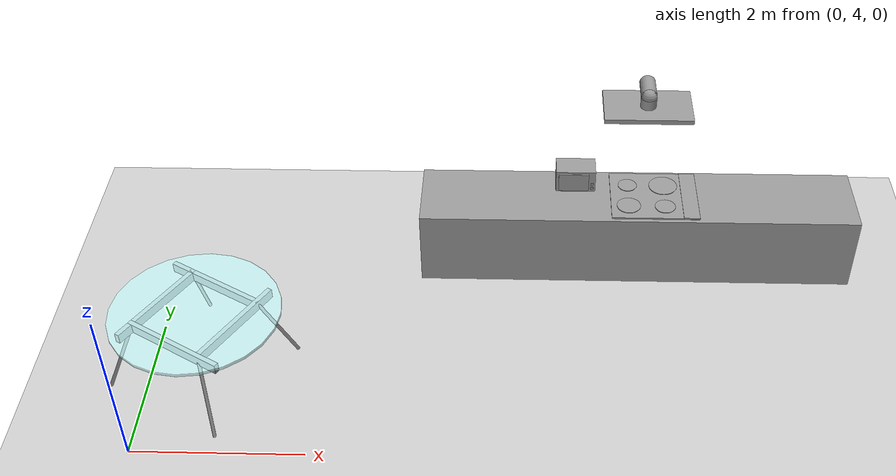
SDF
<sdf version="1.7">
 <world name="default">
  <model name="ground_plane">
   <static>1</static>
   <link name="link">
    <collision name="collision">
     <geometry><plane><normal>0 0 1</normal><size>100 100</size></plane></geometry>
     <surface>
      <contact><collide_bitmask>65535</collide_bitmask></contact>
      <friction><ode><mu>100</mu><mu2>50</mu2></ode></friction>
     </surface>
    </collision>
    <visual name="visual">
     <cast_shadows>0</cast_shadows>
     <geometry><plane><normal>0 0 1</normal><size>100 100</size></plane></geometry>
     <material>
      <script><uri>file://media/materials/scripts/gazebo.material</uri><name>Gazebo/Grey</name></script>
     </material>
    </visual>
   </link>
  </model>
  <model name="my_vacuum">
   <link name="link">
    <inertial>
     <mass>1</mass>
     <inertia>
      <ixx>0.166667</ixx>
      <ixy>0</ixy>
      <ixz>0</ixz>
      <iyy>0.166667</iyy>
      <iyz>0</iyz>
      <izz>0.166667</izz>
     </inertia>
    </inertial>
    <pose>0 -0.048228 0 0 -0 0</pose>
    <visual name="visual">
     <geometry><box><size>1.1 0.65 0.06</size></box></geometry>
     <material>
      <script><name>Gazebo/Grey</name><uri>file://media/materials/scripts/gazebo.material</uri></script>
      <shader type="pixel"><normal_map>__default__</normal_map></shader>
      <ambient>0.3 0.3 0.3 1</ambient>
      <diffuse>0.3 0.3 0.3 1</diffuse>
      <specular>0.01 0.01 0.01 1</specular>
      <emissive>0 0 0 1</emissive>
     </material>
     <pose>0 0 2.1 0 -0 0</pose>
    </visual>
    <collision name="collision">
     <pose>0 0 2.1 0 -0 0</pose>
     <geometry><box><size>1.1 0.65 0.06</size></box></geometry>
     <surface>
      <friction>
       <ode><mu>1</mu><mu2>1</mu2><fdir1>0 0 0</fdir1><slip1>0</slip1><slip2>0</slip2></ode>
       <torsional>
        <coefficient>1</coefficient>
        <patch_radius>0</patch_radius>
        <surface_radius>0</surface_radius>
        <use_patch_radius>1</use_patch_radius>
        <ode><slip>0</slip></ode>
       </torsional>
      </friction>
      <bounce><restitution_coefficient>0</restitution_coefficient><threshold>1e+06</threshold></bounce>
      <contact>
       <collide_without_contact>0</collide_without_contact>
       <collide_without_contact_bitmask>1</collide_without_contact_bitmask>
       <collide_bitmask>1</collide_bitmask>
       <ode>
        <soft_cfm>0</soft_cfm>
        <soft_erp>0.2</soft_erp>
        <kp>1e+13</kp>
        <kd>1</kd>
        <max_vel>0.01</max_vel>
        <min_depth>0</min_depth>
       </ode>
       <bullet>
        <split_impulse>1</split_impulse>
        <split_impulse_penetration_threshold>-0.01</split_impulse_penetration_threshold>
        <soft_cfm>0</soft_cfm>
        <soft_erp>0.2</soft_erp>
        <kp>1e+13</kp>
        <kd>1</kd>
       </bullet>
      </contact>
     </surface>
    </collision>
   </link>
   <link name="link_1">
    <inertial>
     <mass>1</mass>
     <inertia><ixx>0.145833</ixx><ixy>0</ixy><ixz>0</ixz><iyy>0.145833</iyy><iyz>0</iyz><izz>0.125</izz></inertia>
    </inertial>
    <pose>0.003402 -0.072362 2.63858 0 -0 0</pose>
    <visual name="visual">
     <pose>0 0 -0.45 0 -0 0</pose>
     <geometry><cylinder><radius>0.1</radius><length>0.15</length></cylinder></geometry>
     <material>
      <lighting>1</lighting>
      <script><uri>file://media/materials/scripts/gazebo.material</uri><name>Gazebo/Grey</name></script>
      <shader type="pixel"><normal_map>__default__</normal_map></shader>
      <ambient>0.3 0.3 0.3 1</ambient>
      <diffuse>0.3 0.3 0.3 1</diffuse>
      <specular>0.01 0.01 0.01 1</specular>
      <emissive>0 0 0 1</emissive>
     </material>
    </visual>
    <collision name="collision">
     <pose>0 0 -0.45 0 -0 0</pose>
     <geometry><cylinder><radius>0.1</radius><length>0.15</length></cylinder></geometry>
     <surface>
      <friction>
       <ode><mu>1</mu><mu2>1</mu2><fdir1>0 0 0</fdir1><slip1>0</slip1><slip2>0</slip2></ode>
       <torsional>
        <coefficient>1</coefficient>
        <patch_radius>0</patch_radius>
        <surface_radius>0</surface_radius>
        <use_patch_radius>1</use_patch_radius>
        <ode><slip>0</slip></ode>
       </torsional>
      </friction>
      <bounce><restitution_coefficient>0</restitution_coefficient><threshold>1e+06</threshold></bounce>
      <contact>
       <collide_without_contact>0</collide_without_contact>
       <collide_without_contact_bitmask>1</collide_without_contact_bitmask>
       <collide_bitmask>1</collide_bitmask>
       <ode>
        <soft_cfm>0</soft_cfm>
        <soft_erp>0.2</soft_erp>
        <kp>1e+13</kp>
        <kd>1</kd>
        <max_vel>0.01</max_vel>
        <min_depth>0</min_depth>
       </ode>
       <bullet>
        <split_impulse>1</split_impulse>
        <split_impulse_penetration_threshold>-0.01</split_impulse_penetration_threshold>
        <soft_cfm>0</soft_cfm>
        <soft_erp>0.2</soft_erp>
        <kp>1e+13</kp>
        <kd>1</kd>
       </bullet>
      </contact>
     </surface>
    </collision>
   </link>
   <link name="link_1_clone">
    <inertial>
     <mass>1</mass>
     <inertia><ixx>0.145833</ixx><ixy>0</ixy><ixz>0</ixz><iyy>0.145833</iyy><iyz>0</iyz><izz>0.125</izz></inertia>
    </inertial>
    <pose>0.004004 0.087852 2.71388 0 -0 0</pose>
    <visual name="visual">
     <pose>0 0 -0.45 1.5707 -0 0</pose>
     <geometry><cylinder><radius>0.1</radius><length>0.35</length></cylinder></geometry>
     <material>
      <lighting>1</lighting>
      <script><uri>file://media/materials/scripts/gazebo.material</uri><name>Gazebo/Grey</name></script>
      <shader type="pixel"><normal_map>__default__</normal_map></shader>
      <ambient>0.3 0.3 0.3 1</ambient>
      <diffuse>0.3 0.3 0.3 1</diffuse>
      <specular>0.01 0.01 0.01 1</specular>
      <emissive>0 0 0 1</emissive>
     </material>
    </visual>
    <collision name="collision">
     <pose>0 0 -0.45 1.5707 -0 0</pose>
     <geometry><cylinder><radius>0.1</radius><length>0.35</length></cylinder></geometry>
     <surface>
      <friction>
       <ode><mu>1</mu><mu2>1</mu2><fdir1>0 0 0</fdir1><slip1>0</slip1><slip2>0</slip2></ode>
       <torsional>
        <coefficient>1</coefficient>
        <patch_radius>0</patch_radius>
        <surface_radius>0</surface_radius>
        <use_patch_radius>1</use_patch_radius>
        <ode><slip>0</slip></ode>
       </torsional>
      </friction>
      <bounce><restitution_coefficient>0</restitution_coefficient><threshold>1e+06</threshold></bounce>
      <contact>
       <collide_without_contact>0</collide_without_contact>
       <collide_without_contact_bitmask>1</collide_without_contact_bitmask>
       <collide_bitmask>1</collide_bitmask>
       <ode>
        <soft_cfm>0</soft_cfm>
        <soft_erp>0.2</soft_erp>
        <kp>1e+13</kp>
        <kd>1</kd>
        <max_vel>0.01</max_vel>
        <min_depth>0</min_depth>
       </ode>
       <bullet>
        <split_impulse>1</split_impulse>
        <split_impulse_penetration_threshold>-0.01</split_impulse_penetration_threshold>
        <soft_cfm>0</soft_cfm>
        <soft_erp>0.2</soft_erp>
        <kp>1e+13</kp>
        <kd>1</kd>
       </bullet>
      </contact>
     </surface>
    </collision>
   </link>
   <link name="link_3">
    <inertial>
     <mass>1</mass>
     <inertia><ixx>0.1</ixx><ixy>0</ixy><ixz>0</ixz><iyy>0.1</iyy><iyz>0</iyz><izz>0.1</izz></inertia>
    </inertial>
    <pose>0.004236 -0.071859 2.71646 0 -0 0</pose>
    <visual name="visual">
     <pose>0 0 -0.45 0 -0 0</pose>
     <geometry><sphere><radius>0.1</radius></sphere></geometry>
     <material>
      <lighting>1</lighting>
      <script><uri>file://media/materials/scripts/gazebo.material</uri><name>Gazebo/Grey</name></script>
      <shader type="pixel"><normal_map>__default__</normal_map></shader>
      <ambient>0.3 0.3 0.3 1</ambient>
      <diffuse>0.3 0.3 0.3 1</diffuse>
      <specular>0.01 0.01 0.01 1</specular>
      <emissive>0 0 0 1</emissive>
     </material>
    </visual>
    <collision name="collision">
     <pose>0 0 -0.45 0 -0 0</pose>
     <geometry><sphere><radius>0.1</radius></sphere></geometry>
     <surface>
      <friction>
       <ode><mu>1</mu><mu2>1</mu2><fdir1>0 0 0</fdir1><slip1>0</slip1><slip2>0</slip2></ode>
       <torsional>
        <coefficient>1</coefficient>
        <patch_radius>0</patch_radius>
        <surface_radius>0</surface_radius>
        <use_patch_radius>1</use_patch_radius>
        <ode><slip>0</slip></ode>
       </torsional>
      </friction>
      <bounce><restitution_coefficient>0</restitution_coefficient><threshold>1e+06</threshold></bounce>
      <contact>
       <collide_without_contact>0</collide_without_contact>
       <collide_without_contact_bitmask>1</collide_without_contact_bitmask>
       <collide_bitmask>1</collide_bitmask>
       <ode>
        <soft_cfm>0</soft_cfm>
        <soft_erp>0.2</soft_erp>
        <kp>1e+13</kp>
        <kd>1</kd>
        <max_vel>0.01</max_vel>
        <min_depth>0</min_depth>
       </ode>
       <bullet>
        <split_impulse>1</split_impulse>
        <split_impulse_penetration_threshold>-0.01</split_impulse_penetration_threshold>
        <soft_cfm>0</soft_cfm>
        <soft_erp>0.2</soft_erp>
        <kp>1e+13</kp>
        <kd>1</kd>
       </bullet>
      </contact>
     </surface>
    </collision>
   </link>
   <static>1</static>
   <pose>5.94867 7.95804 -0.027775 0 -0 0</pose>
  </model>
  <model name="my_microwave">
   <link name="link">
    <inertial>
     <mass>1</mass>
     <inertia>
      <ixx>0.166667</ixx>
      <ixy>0</ixy>
      <ixz>0</ixz>
      <iyy>0.166667</iyy>
      <iyz>0</iyz>
      <izz>0.166667</izz>
     </inertia>
    </inertial>
    <visual name="visual">
     <geometry><box><size>0.5 0.3 0.3</size></box></geometry>
     <material>
      <script><name>Gazebo/Grey</name><uri>file://media/materials/scripts/gazebo.material</uri></script>
      <shader type="pixel"><normal_map>__default__</normal_map></shader>
      <ambient>0.9 0.9 0.9 1</ambient>
      <diffuse>0.9 0.9 0.9 1</diffuse>
      <specular>0.01 0.01 0.01 1</specular>
      <emissive>0 0 0 1</emissive>
     </material>
     <pose>0 0 1.15 0 -0 0</pose>
    </visual>
    <collision name="collision">
     <pose>0 0 1.15 0 -0 0</pose>
     <geometry><box><size>0.5 0.3 0.3</size></box></geometry>
     <surface>
      <friction>
       <ode><mu>1</mu><mu2>1</mu2><fdir1>0 0 0</fdir1><slip1>0</slip1><slip2>0</slip2></ode>
       <torsional>
        <coefficient>1</coefficient>
        <patch_radius>0</patch_radius>
        <surface_radius>0</surface_radius>
        <use_patch_radius>1</use_patch_radius>
        <ode><slip>0</slip></ode>
       </torsional>
      </friction>
      <bounce><restitution_coefficient>0</restitution_coefficient><threshold>1e+06</threshold></bounce>
      <contact>
       <collide_without_contact>0</collide_without_contact>
       <collide_without_contact_bitmask>1</collide_without_contact_bitmask>
       <collide_bitmask>1</collide_bitmask>
       <ode>
        <soft_cfm>0</soft_cfm>
        <soft_erp>0.2</soft_erp>
        <kp>1e+13</kp>
        <kd>1</kd>
        <max_vel>0.01</max_vel>
        <min_depth>0</min_depth>
       </ode>
       <bullet>
        <split_impulse>1</split_impulse>
        <split_impulse_penetration_threshold>-0.01</split_impulse_penetration_threshold>
        <soft_cfm>0</soft_cfm>
        <soft_erp>0.2</soft_erp>
        <kp>1e+13</kp>
        <kd>1</kd>
       </bullet>
      </contact>
     </surface>
    </collision>
   </link>
   <link name="link_0">
    <inertial>
     <mass>1</mass>
     <inertia><ixx>0.145833</ixx><ixy>0</ixy><ixz>0</ixz><iyy>0.145833</iyy><iyz>0</iyz><izz>0.125</izz></inertia>
    </inertial>
    <pose>0.208916 -0.163165 -0.025713 0 -0 0</pose>
    <visual name="visual">
     <pose>0 0 1.15 1.5707 -0 0</pose>
     <geometry><cylinder><radius>0.02</radius><length>0.01</length></cylinder></geometry>
     <material>
      <lighting>1</lighting>
      <script><uri>file://media/materials/scripts/gazebo.material</uri><name>Gazebo/Grey</name></script>
      <shader type="pixel"><normal_map>__default__</normal_map></shader>
      <ambient>0.3 0.3 0.3 1</ambient>
      <diffuse>0.7 0.7 0.7 1</diffuse>
      <specular>0.01 0.01 0.01 1</specular>
      <emissive>0 0 0 1</emissive>
     </material>
    </visual>
    <collision name="collision">
     <pose>0 0 1.15 0 -0 0</pose>
     <geometry><cylinder><radius>0.02</radius><length>0.01</length></cylinder></geometry>
     <surface>
      <friction>
       <ode><mu>1</mu><mu2>1</mu2><fdir1>0 0 0</fdir1><slip1>0</slip1><slip2>0</slip2></ode>
       <torsional>
        <coefficient>1</coefficient>
        <patch_radius>0</patch_radius>
        <surface_radius>0</surface_radius>
        <use_patch_radius>1</use_patch_radius>
        <ode><slip>0</slip></ode>
       </torsional>
      </friction>
      <bounce><restitution_coefficient>0</restitution_coefficient><threshold>1e+06</threshold></bounce>
      <contact>
       <collide_without_contact>0</collide_without_contact>
       <collide_without_contact_bitmask>1</collide_without_contact_bitmask>
       <collide_bitmask>1</collide_bitmask>
       <ode>
        <soft_cfm>0</soft_cfm>
        <soft_erp>0.2</soft_erp>
        <kp>1e+13</kp>
        <kd>1</kd>
        <max_vel>0.01</max_vel>
        <min_depth>0</min_depth>
       </ode>
       <bullet>
        <split_impulse>1</split_impulse>
        <split_impulse_penetration_threshold>-0.01</split_impulse_penetration_threshold>
        <soft_cfm>0</soft_cfm>
        <soft_erp>0.2</soft_erp>
        <kp>1e+13</kp>
        <kd>1</kd>
       </bullet>
      </contact>
     </surface>
    </collision>
   </link>
   <link name="link_0_clone">
    <inertial>
     <mass>1</mass>
     <inertia><ixx>0.145833</ixx><ixy>0</ixy><ixz>0</ixz><iyy>0.145833</iyy><iyz>0</iyz><izz>0.125</izz></inertia>
    </inertial>
    <pose>0.209169 -0.165813 -0.087936 0 -0 0</pose>
    <visual name="visual">
     <pose>0 0 1.15 1.5707 -0 0</pose>
     <geometry><cylinder><radius>0.02</radius><length>0.01</length></cylinder></geometry>
     <material>
      <lighting>1</lighting>
      <script><uri>file://media/materials/scripts/gazebo.material</uri><name>Gazebo/Grey</name></script>
      <shader type="pixel"><normal_map>__default__</normal_map></shader>
      <ambient>0.3 0.3 0.3 1</ambient>
      <diffuse>0.7 0.7 0.7 1</diffuse>
      <specular>0.01 0.01 0.01 1</specular>
      <emissive>0 0 0 1</emissive>
     </material>
    </visual>
    <collision name="collision">
     <pose>0 0 1.15 0 -0 0</pose>
     <geometry><cylinder><radius>0.02</radius><length>0.01</length></cylinder></geometry>
     <surface>
      <friction>
       <ode><mu>1</mu><mu2>1</mu2><fdir1>0 0 0</fdir1><slip1>0</slip1><slip2>0</slip2></ode>
       <torsional>
        <coefficient>1</coefficient>
        <patch_radius>0</patch_radius>
        <surface_radius>0</surface_radius>
        <use_patch_radius>1</use_patch_radius>
        <ode><slip>0</slip></ode>
       </torsional>
      </friction>
      <bounce><restitution_coefficient>0</restitution_coefficient><threshold>1e+06</threshold></bounce>
      <contact>
       <collide_without_contact>0</collide_without_contact>
       <collide_without_contact_bitmask>1</collide_without_contact_bitmask>
       <collide_bitmask>1</collide_bitmask>
       <ode>
        <soft_cfm>0</soft_cfm>
        <soft_erp>0.2</soft_erp>
        <kp>1e+13</kp>
        <kd>1</kd>
        <max_vel>0.01</max_vel>
        <min_depth>0</min_depth>
       </ode>
       <bullet>
        <split_impulse>1</split_impulse>
        <split_impulse_penetration_threshold>-0.01</split_impulse_penetration_threshold>
        <soft_cfm>0</soft_cfm>
        <soft_erp>0.2</soft_erp>
        <kp>1e+13</kp>
        <kd>1</kd>
       </bullet>
      </contact>
     </surface>
    </collision>
   </link>
   <link name="link_clone">
    <inertial>
     <mass>1</mass>
     <inertia>
      <ixx>0.166667</ixx>
      <ixy>0</ixy>
      <ixz>0</ixz>
      <iyy>0.166667</iyy>
      <iyz>0</iyz>
      <izz>0.166667</izz>
     </inertia>
    </inertial>
    <pose>-0.026233 -0.15998 0 0 -0 0</pose>
    <visual name="visual">
     <geometry><box><size>0.38 0.02 0.25</size></box></geometry>
     <material>
      <script><name>Gazebo/Grey</name><uri>file://media/materials/scripts/gazebo.material</uri></script>
      <shader type="pixel"><normal_map>__default__</normal_map></shader>
      <ambient>0.2 0.2 0.2 1</ambient>
      <diffuse>0.2 0.2 0.2 1</diffuse>
      <specular>0.01 0.01 0.01 1</specular>
      <emissive>0 0 0 1</emissive>
     </material>
     <pose>0 0 1.15 0 -0 0</pose>
    </visual>
    <collision name="collision">
     <pose>0 0 1.15 0 -0 0</pose>
     <geometry><box><size>0.38 0.02 0.25</size></box></geometry>
     <surface>
      <friction>
       <ode><mu>1</mu><mu2>1</mu2><fdir1>0 0 0</fdir1><slip1>0</slip1><slip2>0</slip2></ode>
       <torsional>
        <coefficient>1</coefficient>
        <patch_radius>0</patch_radius>
        <surface_radius>0</surface_radius>
        <use_patch_radius>1</use_patch_radius>
        <ode><slip>0</slip></ode>
       </torsional>
      </friction>
      <bounce><restitution_coefficient>0</restitution_coefficient><threshold>1e+06</threshold></bounce>
      <contact>
       <collide_without_contact>0</collide_without_contact>
       <collide_without_contact_bitmask>1</collide_without_contact_bitmask>
       <collide_bitmask>1</collide_bitmask>
       <ode>
        <soft_cfm>0</soft_cfm>
        <soft_erp>0.2</soft_erp>
        <kp>1e+13</kp>
        <kd>1</kd>
        <max_vel>0.01</max_vel>
        <min_depth>0</min_depth>
       </ode>
       <bullet>
        <split_impulse>1</split_impulse>
        <split_impulse_penetration_threshold>-0.01</split_impulse_penetration_threshold>
        <soft_cfm>0</soft_cfm>
        <soft_erp>0.2</soft_erp>
        <kp>1e+13</kp>
        <kd>1</kd>
       </bullet>
      </contact>
     </surface>
    </collision>
   </link>
   <static>1</static>
   <pose>5.08394 7.71295 0 0 -0 0</pose>
  </model>
  <model name="my_kitchen">
   <link name="link">
    <inertial>
     <mass>1</mass>
     <inertia>
      <ixx>0.166667</ixx>
      <ixy>0</ixy>
      <ixz>0</ixz>
      <iyy>0.166667</iyy>
      <iyz>0</iyz>
      <izz>0.166667</izz>
     </inertia>
    </inertial>
    <pose>1.23923 -0.000128 0 0 -0 0</pose>
    <visual name="visual">
     <geometry><box><size>5.5 1 1</size></box></geometry>
     <material>
      <script><name>Gazebo/Grey</name><uri>file://media/materials/scripts/gazebo.material</uri></script>
      <shader type="pixel"><normal_map>__default__</normal_map></shader>
      <ambient>0.8 0.8 0.8 1</ambient>
      <diffuse>0.65 0.65 0.65 1</diffuse>
      <specular>0.01 0.01 0.01 1</specular>
      <emissive>0 0 0 1</emissive>
     </material>
     <pose>0 0 0.5 0 -0 0</pose>
    </visual>
    <collision name="collision">
     <pose>0 0 0.5 0 -0 0</pose>
     <geometry><box><size>5.5 1 1</size></box></geometry>
     <surface>
      <friction>
       <ode><mu>1</mu><mu2>1</mu2><fdir1>0 0 0</fdir1><slip1>0</slip1><slip2>0</slip2></ode>
       <torsional>
        <coefficient>1</coefficient>
        <patch_radius>0</patch_radius>
        <surface_radius>0</surface_radius>
        <use_patch_radius>1</use_patch_radius>
        <ode><slip>0</slip></ode>
       </torsional>
      </friction>
      <bounce><restitution_coefficient>0</restitution_coefficient><threshold>1e+06</threshold></bounce>
      <contact>
       <collide_without_contact>0</collide_without_contact>
       <collide_without_contact_bitmask>1</collide_without_contact_bitmask>
       <collide_bitmask>1</collide_bitmask>
       <ode>
        <soft_cfm>0</soft_cfm>
        <soft_erp>0.2</soft_erp>
        <kp>1e+13</kp>
        <kd>1</kd>
        <max_vel>0.01</max_vel>
        <min_depth>0</min_depth>
       </ode>
       <bullet>
        <split_impulse>1</split_impulse>
        <split_impulse_penetration_threshold>-0.01</split_impulse_penetration_threshold>
        <soft_cfm>0</soft_cfm>
        <soft_erp>0.2</soft_erp>
        <kp>1e+13</kp>
        <kd>1</kd>
       </bullet>
      </contact>
     </surface>
    </collision>
   </link>
   <link name="link_0_0">
    <inertial>
     <mass>1</mass>
     <inertia><ixx>0.145833</ixx><ixy>0</ixy><ixz>0</ixz><iyy>0.145833</iyy><iyz>0</iyz><izz>0.125</izz></inertia>
    </inertial>
    <pose>1.11587 -0.213264 1.02593 0 -0 0</pose>
    <gravity>0</gravity>
    <visual name="visual">
     <geometry><cylinder><radius>0.15</radius><length>0.01</length></cylinder></geometry>
     <material>
      <lighting>1</lighting>
      <script><uri>file://media/materials/scripts/gazebo.material</uri><name>Gazebo/Grey</name></script>
      <shader type="pixel"><normal_map>__default__</normal_map></shader>
      <ambient>0.3 0.3 0.3 1</ambient>
      <diffuse>0.3 0.3 0.3 1</diffuse>
      <specular>0.01 0.01 0.01 1</specular>
      <emissive>0 0 0 1</emissive>
     </material>
    </visual>
    <collision name="collision">
     <geometry><cylinder><radius>0.15</radius><length>0.01</length></cylinder></geometry>
     <surface>
      <friction>
       <ode><mu>1</mu><mu2>1</mu2><fdir1>0 0 0</fdir1><slip1>0</slip1><slip2>0</slip2></ode>
       <torsional>
        <coefficient>1</coefficient>
        <patch_radius>0</patch_radius>
        <surface_radius>0</surface_radius>
        <use_patch_radius>1</use_patch_radius>
        <ode><slip>0</slip></ode>
       </torsional>
      </friction>
      <bounce><restitution_coefficient>0</restitution_coefficient><threshold>1e+06</threshold></bounce>
      <contact>
       <collide_without_contact>0</collide_without_contact>
       <collide_without_contact_bitmask>1</collide_without_contact_bitmask>
       <collide_bitmask>1</collide_bitmask>
       <ode>
        <soft_cfm>0</soft_cfm>
        <soft_erp>0.2</soft_erp>
        <kp>1e+13</kp>
        <kd>1</kd>
        <max_vel>0.01</max_vel>
        <min_depth>0</min_depth>
       </ode>
       <bullet>
        <split_impulse>1</split_impulse>
        <split_impulse_penetration_threshold>-0.01</split_impulse_penetration_threshold>
        <soft_cfm>0</soft_cfm>
        <soft_erp>0.2</soft_erp>
        <kp>1e+13</kp>
        <kd>1</kd>
       </bullet>
      </contact>
     </surface>
    </collision>
   </link>
   <link name="link_0_0_clone">
    <inertial>
     <mass>1</mass>
     <inertia><ixx>0.145833</ixx><ixy>0</ixy><ixz>0</ixz><iyy>0.145833</iyy><iyz>0</iyz><izz>0.125</izz></inertia>
    </inertial>
    <pose>1.11788 0.197131 1.02593 0 -0 0</pose>
    <gravity>0</gravity>
    <visual name="visual">
     <geometry><cylinder><radius>0.12</radius><length>0.01</length></cylinder></geometry>
     <material>
      <lighting>1</lighting>
      <script><uri>file://media/materials/scripts/gazebo.material</uri><name>Gazebo/Grey</name></script>
      <shader type="pixel"><normal_map>__default__</normal_map></shader>
      <ambient>0.3 0.3 0.3 1</ambient>
      <diffuse>0.3 0.3 0.3 1</diffuse>
      <specular>0.01 0.01 0.01 1</specular>
      <emissive>0 0 0 1</emissive>
     </material>
    </visual>
    <collision name="collision">
     <geometry><cylinder><radius>0.12</radius><length>0.01</length></cylinder></geometry>
     <surface>
      <friction>
       <ode><mu>1</mu><mu2>1</mu2><fdir1>0 0 0</fdir1><slip1>0</slip1><slip2>0</slip2></ode>
       <torsional>
        <coefficient>1</coefficient>
        <patch_radius>0</patch_radius>
        <surface_radius>0</surface_radius>
        <use_patch_radius>1</use_patch_radius>
        <ode><slip>0</slip></ode>
       </torsional>
      </friction>
      <bounce><restitution_coefficient>0</restitution_coefficient><threshold>1e+06</threshold></bounce>
      <contact>
       <collide_without_contact>0</collide_without_contact>
       <collide_without_contact_bitmask>1</collide_without_contact_bitmask>
       <collide_bitmask>1</collide_bitmask>
       <ode>
        <soft_cfm>0</soft_cfm>
        <soft_erp>0.2</soft_erp>
        <kp>1e+13</kp>
        <kd>1</kd>
        <max_vel>0.01</max_vel>
        <min_depth>0</min_depth>
       </ode>
       <bullet>
        <split_impulse>1</split_impulse>
        <split_impulse_penetration_threshold>-0.01</split_impulse_penetration_threshold>
        <soft_cfm>0</soft_cfm>
        <soft_erp>0.2</soft_erp>
        <kp>1e+13</kp>
        <kd>1</kd>
       </bullet>
      </contact>
     </surface>
    </collision>
   </link>
   <link name="link_0_0_clone_clone">
    <inertial>
     <mass>1</mass>
     <inertia><ixx>0.145833</ixx><ixy>0</ixy><ixz>0</ixz><iyy>0.145833</iyy><iyz>0</iyz><izz>0.125</izz></inertia>
    </inertial>
    <pose>1.57169 0.194413 1.02593 0 -0 0</pose>
    <gravity>0</gravity>
    <visual name="visual">
     <geometry><cylinder><radius>0.18</radius><length>0.01</length></cylinder></geometry>
     <material>
      <lighting>1</lighting>
      <script><uri>file://media/materials/scripts/gazebo.material</uri><name>Gazebo/Grey</name></script>
      <shader type="pixel"><normal_map>__default__</normal_map></shader>
      <ambient>0.3 0.3 0.3 1</ambient>
      <diffuse>0.3 0.3 0.3 1</diffuse>
      <specular>0.01 0.01 0.01 1</specular>
      <emissive>0 0 0 1</emissive>
     </material>
    </visual>
    <collision name="collision">
     <geometry><cylinder><radius>0.18</radius><length>0.01</length></cylinder></geometry>
     <surface>
      <friction>
       <ode><mu>1</mu><mu2>1</mu2><fdir1>0 0 0</fdir1><slip1>0</slip1><slip2>0</slip2></ode>
       <torsional>
        <coefficient>1</coefficient>
        <patch_radius>0</patch_radius>
        <surface_radius>0</surface_radius>
        <use_patch_radius>1</use_patch_radius>
        <ode><slip>0</slip></ode>
       </torsional>
      </friction>
      <bounce><restitution_coefficient>0</restitution_coefficient><threshold>1e+06</threshold></bounce>
      <contact>
       <collide_without_contact>0</collide_without_contact>
       <collide_without_contact_bitmask>1</collide_without_contact_bitmask>
       <collide_bitmask>1</collide_bitmask>
       <ode>
        <soft_cfm>0</soft_cfm>
        <soft_erp>0.2</soft_erp>
        <kp>1e+13</kp>
        <kd>1</kd>
        <max_vel>0.01</max_vel>
        <min_depth>0</min_depth>
       </ode>
       <bullet>
        <split_impulse>1</split_impulse>
        <split_impulse_penetration_threshold>-0.01</split_impulse_penetration_threshold>
        <soft_cfm>0</soft_cfm>
        <soft_erp>0.2</soft_erp>
        <kp>1e+13</kp>
        <kd>1</kd>
       </bullet>
      </contact>
     </surface>
    </collision>
   </link>
   <link name="link_0_0_clone_clone_clone">
    <inertial>
     <mass>1</mass>
     <inertia><ixx>0.145833</ixx><ixy>0</ixy><ixz>0</ixz><iyy>0.145833</iyy><iyz>0</iyz><izz>0.125</izz></inertia>
    </inertial>
    <pose>1.57274 -0.22407 1.02593 0 -0 0</pose>
    <gravity>0</gravity>
    <visual name="visual">
     <geometry><cylinder><radius>0.13</radius><length>0.01</length></cylinder></geometry>
     <material>
      <lighting>1</lighting>
      <script><uri>file://media/materials/scripts/gazebo.material</uri><name>Gazebo/Grey</name></script>
      <shader type="pixel"><normal_map>__default__</normal_map></shader>
      <ambient>0.3 0.3 0.3 1</ambient>
      <diffuse>0.3 0.3 0.3 1</diffuse>
      <specular>0.01 0.01 0.01 1</specular>
      <emissive>0 0 0 1</emissive>
     </material>
    </visual>
    <collision name="collision">
     <geometry><cylinder><radius>0.13</radius><length>0.01</length></cylinder></geometry>
     <surface>
      <friction>
       <ode><mu>1</mu><mu2>1</mu2><fdir1>0 0 0</fdir1><slip1>0</slip1><slip2>0</slip2></ode>
       <torsional>
        <coefficient>1</coefficient>
        <patch_radius>0</patch_radius>
        <surface_radius>0</surface_radius>
        <use_patch_radius>1</use_patch_radius>
        <ode><slip>0</slip></ode>
       </torsional>
      </friction>
      <bounce><restitution_coefficient>0</restitution_coefficient><threshold>1e+06</threshold></bounce>
      <contact>
       <collide_without_contact>0</collide_without_contact>
       <collide_without_contact_bitmask>1</collide_without_contact_bitmask>
       <collide_bitmask>1</collide_bitmask>
       <ode>
        <soft_cfm>0</soft_cfm>
        <soft_erp>0.2</soft_erp>
        <kp>1e+13</kp>
        <kd>1</kd>
        <max_vel>0.01</max_vel>
        <min_depth>0</min_depth>
       </ode>
       <bullet>
        <split_impulse>1</split_impulse>
        <split_impulse_penetration_threshold>-0.01</split_impulse_penetration_threshold>
        <soft_cfm>0</soft_cfm>
        <soft_erp>0.2</soft_erp>
        <kp>1e+13</kp>
        <kd>1</kd>
       </bullet>
      </contact>
     </surface>
    </collision>
   </link>
   <link name="link_clone_0">
    <inertial>
     <mass>1</mass>
     <inertia>
      <ixx>0.166667</ixx>
      <ixy>0</ixy>
      <ixz>0</ixz>
      <iyy>0.166667</iyy>
      <iyz>0</iyz>
      <izz>0.166667</izz>
     </inertia>
    </inertial>
    <pose>1.44437 -0.002505 0.513121 0 -0 0</pose>
    <gravity>0</gravity>
    <visual name="visual">
     <geometry><box><size>1.1 0.9 0.02</size></box></geometry>
     <material>
      <script><name>Gazebo/Grey</name><uri>file://media/materials/scripts/gazebo.material</uri></script>
      <shader type="pixel"><normal_map>__default__</normal_map></shader>
      <ambient>0.2 0.2 0.2 1</ambient>
      <diffuse>0.2 0.2 0.2 1</diffuse>
      <specular>0.01 0.01 0.01 1</specular>
      <emissive>0 0 0 1</emissive>
     </material>
     <pose>0 0 0.5 0 -0 0</pose>
    </visual>
    <collision name="collision">
     <pose>0 0 0.5 0 -0 0</pose>
     <geometry><box><size>1.1 0.9 0.02</size></box></geometry>
     <surface>
      <friction>
       <ode><mu>1</mu><mu2>1</mu2><fdir1>0 0 0</fdir1><slip1>0</slip1><slip2>0</slip2></ode>
       <torsional>
        <coefficient>1</coefficient>
        <patch_radius>0</patch_radius>
        <surface_radius>0</surface_radius>
        <use_patch_radius>1</use_patch_radius>
        <ode><slip>0</slip></ode>
       </torsional>
      </friction>
      <bounce><restitution_coefficient>0</restitution_coefficient><threshold>1e+06</threshold></bounce>
      <contact>
       <collide_without_contact>0</collide_without_contact>
       <collide_without_contact_bitmask>1</collide_without_contact_bitmask>
       <collide_bitmask>1</collide_bitmask>
       <ode>
        <soft_cfm>0</soft_cfm>
        <soft_erp>0.2</soft_erp>
        <kp>1e+13</kp>
        <kd>1</kd>
        <max_vel>0.01</max_vel>
        <min_depth>0</min_depth>
       </ode>
       <bullet>
        <split_impulse>1</split_impulse>
        <split_impulse_penetration_threshold>-0.01</split_impulse_penetration_threshold>
        <soft_cfm>0</soft_cfm>
        <soft_erp>0.2</soft_erp>
        <kp>1e+13</kp>
        <kd>1</kd>
       </bullet>
      </contact>
     </surface>
    </collision>
   </link>
   <link name="link_clone_0_clone">
    <inertial>
     <mass>1</mass>
     <inertia>
      <ixx>0.166667</ixx>
      <ixy>0</ixy>
      <ixz>0</ixz>
      <iyy>0.166667</iyy>
      <iyz>0</iyz>
      <izz>0.166667</izz>
     </inertia>
    </inertial>
    <pose>1.89193 -0.003715 0.520133 0 -0 0</pose>
    <gravity>0</gravity>
    <visual name="visual">
     <geometry><box><size>0.2 0.9 0.02</size></box></geometry>
     <material>
      <script><name>Gazebo/Grey</name><uri>file://media/materials/scripts/gazebo.material</uri></script>
      <shader type="pixel"><normal_map>__default__</normal_map></shader>
      <ambient>0.4 0.4 0.4 1</ambient>
      <diffuse>0.4 0.4 0.4 1</diffuse>
      <specular>0.01 0.01 0.01 1</specular>
      <emissive>0 0 0 1</emissive>
     </material>
     <pose>0 0 0.5 0 -0 0</pose>
    </visual>
    <collision name="collision">
     <pose>0 0 0.5 0 -0 0</pose>
     <geometry><box><size>0.2 0.9 0.02</size></box></geometry>
     <surface>
      <friction>
       <ode><mu>1</mu><mu2>1</mu2><fdir1>0 0 0</fdir1><slip1>0</slip1><slip2>0</slip2></ode>
       <torsional>
        <coefficient>1</coefficient>
        <patch_radius>0</patch_radius>
        <surface_radius>0</surface_radius>
        <use_patch_radius>1</use_patch_radius>
        <ode><slip>0</slip></ode>
       </torsional>
      </friction>
      <bounce><restitution_coefficient>0</restitution_coefficient><threshold>1e+06</threshold></bounce>
      <contact>
       <collide_without_contact>0</collide_without_contact>
       <collide_without_contact_bitmask>1</collide_without_contact_bitmask>
       <collide_bitmask>1</collide_bitmask>
       <ode>
        <soft_cfm>0</soft_cfm>
        <soft_erp>0.2</soft_erp>
        <kp>1e+13</kp>
        <kd>1</kd>
        <max_vel>0.01</max_vel>
        <min_depth>0</min_depth>
       </ode>
       <bullet>
        <split_impulse>1</split_impulse>
        <split_impulse_penetration_threshold>-0.01</split_impulse_penetration_threshold>
        <soft_cfm>0</soft_cfm>
        <soft_erp>0.2</soft_erp>
        <kp>1e+13</kp>
        <kd>1</kd>
       </bullet>
      </contact>
     </surface>
    </collision>
   </link>
   <static>1</static>
   <pose>4.63339 7.47111 0 0 -0 0</pose>
  </model>
  <model name="my_round_table">
   <link name="link_0">
    <inertial>
     <mass>1</mass>
     <inertia><ixx>0.145833</ixx><ixy>0</ixy><ixz>0</ixz><iyy>0.145833</iyy><iyz>0</iyz><izz>0.125</izz></inertia>
    </inertial>
    <pose>-0.33877 -8.15163 0.5 0 -0 0</pose>
    <visual name="visual">
     <pose>0 0 0.45 0 -0 0</pose>
     <geometry><cylinder><radius>1</radius><length>0.04</length></cylinder></geometry>
     <material>
      <lighting>1</lighting>
      <script><uri>file://media/materials/scripts/gazebo.material</uri><name>Gazebo/Grey</name></script>
      <shader type="pixel"><normal_map>__default__</normal_map></shader>
      <ambient>0.79 1 1 0.4</ambient>
      <diffuse>0.79 1 1 1</diffuse>
      <specular>0.01 0.01 0.01 1</specular>
      <emissive>0 0 0 1</emissive>
     </material>
     <transparency>0.3</transparency>
    </visual>
    <collision name="collision">
     <pose>0 0 0.45 0 -0 0</pose>
     <geometry><cylinder><radius>1</radius><length>0.04</length></cylinder></geometry>
     <surface>
      <friction>
       <ode><mu>1</mu><mu2>1</mu2><fdir1>0 0 0</fdir1><slip1>0</slip1><slip2>0</slip2></ode>
       <torsional>
        <coefficient>1</coefficient>
        <patch_radius>0</patch_radius>
        <surface_radius>0</surface_radius>
        <use_patch_radius>1</use_patch_radius>
        <ode><slip>0</slip></ode>
       </torsional>
      </friction>
      <bounce><restitution_coefficient>0</restitution_coefficient><threshold>1e+06</threshold></bounce>
      <contact>
       <collide_without_contact>0</collide_without_contact>
       <collide_without_contact_bitmask>1</collide_without_contact_bitmask>
       <collide_bitmask>1</collide_bitmask>
       <ode>
        <soft_cfm>0</soft_cfm>
        <soft_erp>0.2</soft_erp>
        <kp>1e+13</kp>
        <kd>1</kd>
        <max_vel>0.01</max_vel>
        <min_depth>0</min_depth>
       </ode>
       <bullet>
        <split_impulse>1</split_impulse>
        <split_impulse_penetration_threshold>-0.01</split_impulse_penetration_threshold>
        <soft_cfm>0</soft_cfm>
        <soft_erp>0.2</soft_erp>
        <kp>1e+13</kp>
        <kd>1</kd>
       </bullet>
      </contact>
     </surface>
    </collision>
   </link>
   <link name="link_0_0">
    <inertial>
     <mass>1</mass>
     <inertia>
      <ixx>0.166667</ixx>
      <ixy>0</ixy>
      <ixz>0</ixz>
      <iyy>0.166667</iyy>
      <iyz>0</iyz>
      <izz>0.166667</izz>
     </inertia>
    </inertial>
    <pose>-0.834607 -8.25556 0.5 0 -0 0</pose>
    <visual name="visual">
     <pose>0 0 0.4 0 -0 0</pose>
     <geometry><box><size>0.06 1.3 0.12</size></box></geometry>
     <material>
      <lighting>1</lighting>
      <script><uri>file://media/materials/scripts/gazebo.material</uri><name>Gazebo/Grey</name></script>
      <shader type="pixel"><normal_map>__default__</normal_map></shader>
      <ambient>0.6 0.6 0.6 1</ambient>
      <diffuse>0.7 0.7 0.7 1</diffuse>
      <specular>0.01 0.01 0.01 1</specular>
      <emissive>0 0 0 1</emissive>
     </material>
    </visual>
    <collision name="collision">
     <pose>0 0 0.4 0 -0 0</pose>
     <geometry><box><size>0.06 1.3 0.12</size></box></geometry>
     <surface>
      <friction>
       <ode><mu>1</mu><mu2>1</mu2><fdir1>0 0 0</fdir1><slip1>0</slip1><slip2>0</slip2></ode>
       <torsional>
        <coefficient>1</coefficient>
        <patch_radius>0</patch_radius>
        <surface_radius>0</surface_radius>
        <use_patch_radius>1</use_patch_radius>
        <ode><slip>0</slip></ode>
       </torsional>
      </friction>
      <bounce><restitution_coefficient>0</restitution_coefficient><threshold>1e+06</threshold></bounce>
      <contact>
       <collide_without_contact>0</collide_without_contact>
       <collide_without_contact_bitmask>1</collide_without_contact_bitmask>
       <collide_bitmask>1</collide_bitmask>
       <ode>
        <soft_cfm>0</soft_cfm>
        <soft_erp>0.2</soft_erp>
        <kp>1e+13</kp>
        <kd>1</kd>
        <max_vel>0.01</max_vel>
        <min_depth>0</min_depth>
       </ode>
       <bullet>
        <split_impulse>1</split_impulse>
        <split_impulse_penetration_threshold>-0.01</split_impulse_penetration_threshold>
        <soft_cfm>0</soft_cfm>
        <soft_erp>0.2</soft_erp>
        <kp>1e+13</kp>
        <kd>1</kd>
       </bullet>
      </contact>
     </surface>
    </collision>
   </link>
   <link name="link_0_0_clone">
    <inertial>
     <mass>1</mass>
     <inertia>
      <ixx>0.166667</ixx>
      <ixy>0</ixy>
      <ixz>0</ixz>
      <iyy>0.166667</iyy>
      <iyz>0</iyz>
      <izz>0.166667</izz>
     </inertia>
    </inertial>
    <pose>-0.470736 -7.63546 0.5 0 -0 0</pose>
    <visual name="visual_0">
     <pose>0 0 0.4 0 -0 1.5707</pose>
     <geometry><box><size>0.06 1.3 0.12</size></box></geometry>
     <material>
      <lighting>1</lighting>
      <script><uri>file://media/materials/scripts/gazebo.material</uri><name>Gazebo/Grey</name></script>
      <shader type="pixel"><normal_map>__default__</normal_map></shader>
      <ambient>0.6 0.6 0.6 1</ambient>
      <diffuse>0.7 0.7 0.7 1</diffuse>
      <specular>0.01 0.01 0.01 1</specular>
      <emissive>0 0 0 1</emissive>
     </material>
    </visual>
    <collision name="collision">
     <pose>0 0 0.4 0 -0 1.5707</pose>
     <geometry><box><size>0.06 1.3 0.12</size></box></geometry>
     <surface>
      <friction>
       <ode><mu>1</mu><mu2>1</mu2><fdir1>0 0 0</fdir1><slip1>0</slip1><slip2>0</slip2></ode>
       <torsional>
        <coefficient>1</coefficient>
        <patch_radius>0</patch_radius>
        <surface_radius>0</surface_radius>
        <use_patch_radius>1</use_patch_radius>
        <ode><slip>0</slip></ode>
       </torsional>
      </friction>
      <bounce><restitution_coefficient>0</restitution_coefficient><threshold>1e+06</threshold></bounce>
      <contact>
       <collide_without_contact>0</collide_without_contact>
       <collide_without_contact_bitmask>1</collide_without_contact_bitmask>
       <collide_bitmask>1</collide_bitmask>
       <ode>
        <soft_cfm>0</soft_cfm>
        <soft_erp>0.2</soft_erp>
        <kp>1e+13</kp>
        <kd>1</kd>
        <max_vel>0.01</max_vel>
        <min_depth>0</min_depth>
       </ode>
       <bullet>
        <split_impulse>1</split_impulse>
        <split_impulse_penetration_threshold>-0.01</split_impulse_penetration_threshold>
        <soft_cfm>0</soft_cfm>
        <soft_erp>0.2</soft_erp>
        <kp>1e+13</kp>
        <kd>1</kd>
       </bullet>
      </contact>
     </surface>
    </collision>
   </link>
   <link name="link_0_0_clone_0">
    <inertial>
     <mass>1</mass>
     <inertia>
      <ixx>0.166667</ixx>
      <ixy>0</ixy>
      <ixz>0</ixz>
      <iyy>0.166667</iyy>
      <iyz>0</iyz>
      <izz>0.166667</izz>
     </inertia>
    </inertial>
    <pose>0.150666 -8.04578 0.5 0 -0 0</pose>
    <visual name="visual_0">
     <pose>0 0 0.4 0 -0 0</pose>
     <geometry><box><size>0.06 1.3 0.12</size></box></geometry>
     <material>
      <lighting>1</lighting>
      <script><uri>file://media/materials/scripts/gazebo.material</uri><name>Gazebo/Grey</name></script>
      <shader type="pixel"><normal_map>__default__</normal_map></shader>
      <ambient>0.6 0.6 0.6 1</ambient>
      <diffuse>0.7 0.7 0.7 1</diffuse>
      <specular>0.01 0.01 0.01 1</specular>
      <emissive>0 0 0 1</emissive>
     </material>
    </visual>
    <collision name="collision">
     <pose>0 0 0.4 0 -0 0</pose>
     <geometry><box><size>0.06 1.3 0.12</size></box></geometry>
     <surface>
      <friction>
       <ode><mu>1</mu><mu2>1</mu2><fdir1>0 0 0</fdir1><slip1>0</slip1><slip2>0</slip2></ode>
       <torsional>
        <coefficient>1</coefficient>
        <patch_radius>0</patch_radius>
        <surface_radius>0</surface_radius>
        <use_patch_radius>1</use_patch_radius>
        <ode><slip>0</slip></ode>
       </torsional>
      </friction>
      <bounce><restitution_coefficient>0</restitution_coefficient><threshold>1e+06</threshold></bounce>
      <contact>
       <collide_without_contact>0</collide_without_contact>
       <collide_without_contact_bitmask>1</collide_without_contact_bitmask>
       <collide_bitmask>1</collide_bitmask>
       <ode>
        <soft_cfm>0</soft_cfm>
        <soft_erp>0.2</soft_erp>
        <kp>1e+13</kp>
        <kd>1</kd>
        <max_vel>0.01</max_vel>
        <min_depth>0</min_depth>
       </ode>
       <bullet>
        <split_impulse>1</split_impulse>
        <split_impulse_penetration_threshold>-0.01</split_impulse_penetration_threshold>
        <soft_cfm>0</soft_cfm>
        <soft_erp>0.2</soft_erp>
        <kp>1e+13</kp>
        <kd>1</kd>
       </bullet>
      </contact>
     </surface>
    </collision>
   </link>
   <link name="link_0_0_clone_clone">
    <inertial>
     <mass>1</mass>
     <inertia>
      <ixx>0.166667</ixx>
      <ixy>0</ixy>
      <ixz>0</ixz>
      <iyy>0.166667</iyy>
      <iyz>0</iyz>
      <izz>0.166667</izz>
     </inertia>
    </inertial>
    <pose>-0.215262 -8.66786 0.5 0 -0 0</pose>
    <visual name="visual_0">
     <pose>0 0 0.4 0 -0 1.5707</pose>
     <geometry><box><size>0.06 1.3 0.12</size></box></geometry>
     <material>
      <lighting>1</lighting>
      <script><uri>file://media/materials/scripts/gazebo.material</uri><name>Gazebo/Grey</name></script>
      <shader type="pixel"><normal_map>__default__</normal_map></shader>
      <ambient>0.6 0.6 0.6 1</ambient>
      <diffuse>0.7 0.7 0.7 1</diffuse>
      <specular>0.01 0.01 0.01 1</specular>
      <emissive>0 0 0 1</emissive>
     </material>
    </visual>
    <collision name="collision">
     <pose>0 0 0.4 0 -0 1.5707</pose>
     <geometry><box><size>0.06 1.3 0.12</size></box></geometry>
     <surface>
      <friction>
       <ode><mu>1</mu><mu2>1</mu2><fdir1>0 0 0</fdir1><slip1>0</slip1><slip2>0</slip2></ode>
       <torsional>
        <coefficient>1</coefficient>
        <patch_radius>0</patch_radius>
        <surface_radius>0</surface_radius>
        <use_patch_radius>1</use_patch_radius>
        <ode><slip>0</slip></ode>
       </torsional>
      </friction>
      <bounce><restitution_coefficient>0</restitution_coefficient><threshold>1e+06</threshold></bounce>
      <contact>
       <collide_without_contact>0</collide_without_contact>
       <collide_without_contact_bitmask>1</collide_without_contact_bitmask>
       <collide_bitmask>1</collide_bitmask>
       <ode>
        <soft_cfm>0</soft_cfm>
        <soft_erp>0.2</soft_erp>
        <kp>1e+13</kp>
        <kd>1</kd>
        <max_vel>0.01</max_vel>
        <min_depth>0</min_depth>
       </ode>
       <bullet>
        <split_impulse>1</split_impulse>
        <split_impulse_penetration_threshold>-0.01</split_impulse_penetration_threshold>
        <soft_cfm>0</soft_cfm>
        <soft_erp>0.2</soft_erp>
        <kp>1e+13</kp>
        <kd>1</kd>
       </bullet>
      </contact>
     </surface>
    </collision>
   </link>
   <link name="link_1_clone_1_clone_clone">
    <inertial>
     <mass>1</mass>
     <inertia><ixx>0.145833</ixx><ixy>0</ixy><ixz>0</ixz><iyy>0.145833</iyy><iyz>0</iyz><izz>0.125</izz></inertia>
    </inertial>
    <pose>-0.929071 -7.47144 0.501681 0 0 -0.237389</pose>
    <visual name="visual">
     <pose>0 0 -0.02 0.3 0.3 0</pose>
     <geometry><cylinder><radius>0.02</radius><length>1</length></cylinder></geometry>
     <material>
      <lighting>1</lighting>
      <script><uri>file://media/materials/scripts/gazebo.material</uri><name>Gazebo/Grey</name></script>
      <shader type="pixel"><normal_map>__default__</normal_map></shader>
      <ambient>0.5 0.5 0.5 1</ambient>
      <diffuse>0.8 0.8 0.8 1</diffuse>
      <specular>0.01 0.01 0.01 1</specular>
      <emissive>0 0 0 1</emissive>
     </material>
    </visual>
    <collision name="collision">
     <pose>0 0 -0.02 0.3 0.3 0</pose>
     <geometry><cylinder><radius>0.02</radius><length>1</length></cylinder></geometry>
     <surface>
      <friction>
       <ode><mu>1</mu><mu2>1</mu2><fdir1>0 0 0</fdir1><slip1>0</slip1><slip2>0</slip2></ode>
       <torsional>
        <coefficient>1</coefficient>
        <patch_radius>0</patch_radius>
        <surface_radius>0</surface_radius>
        <use_patch_radius>1</use_patch_radius>
        <ode><slip>0</slip></ode>
       </torsional>
      </friction>
      <bounce><restitution_coefficient>0</restitution_coefficient><threshold>1e+06</threshold></bounce>
      <contact>
       <collide_without_contact>0</collide_without_contact>
       <collide_without_contact_bitmask>1</collide_without_contact_bitmask>
       <collide_bitmask>1</collide_bitmask>
       <ode>
        <soft_cfm>0</soft_cfm>
        <soft_erp>0.2</soft_erp>
        <kp>1e+13</kp>
        <kd>1</kd>
        <max_vel>0.01</max_vel>
        <min_depth>0</min_depth>
       </ode>
       <bullet>
        <split_impulse>1</split_impulse>
        <split_impulse_penetration_threshold>-0.01</split_impulse_penetration_threshold>
        <soft_cfm>0</soft_cfm>
        <soft_erp>0.2</soft_erp>
        <kp>1e+13</kp>
        <kd>1</kd>
       </bullet>
      </contact>
     </surface>
    </collision>
   </link>
   <link name="link_1_clone_1_clone_clone_clone">
    <inertial>
     <mass>1</mass>
     <inertia><ixx>0.145833</ixx><ixy>0</ixy><ixz>0</ixz><iyy>0.145833</iyy><iyz>0</iyz><izz>0.125</izz></inertia>
    </inertial>
    <pose>-0.965306 -8.81368 0.501681 0 -0 1.63052</pose>
    <visual name="visual">
     <pose>0 0 -0.02 0.3 0.3 0</pose>
     <geometry><cylinder><radius>0.02</radius><length>1</length></cylinder></geometry>
     <material>
      <lighting>1</lighting>
      <script><uri>file://media/materials/scripts/gazebo.material</uri><name>Gazebo/Grey</name></script>
      <shader type="pixel"><normal_map>__default__</normal_map></shader>
      <ambient>0.5 0.5 0.5 1</ambient>
      <diffuse>0.8 0.8 0.8 1</diffuse>
      <specular>0.01 0.01 0.01 1</specular>
      <emissive>0 0 0 1</emissive>
     </material>
    </visual>
    <collision name="collision">
     <pose>0 0 -0.02 0.3 0.3 0</pose>
     <geometry><cylinder><radius>0.02</radius><length>1</length></cylinder></geometry>
     <surface>
      <friction>
       <ode><mu>1</mu><mu2>1</mu2><fdir1>0 0 0</fdir1><slip1>0</slip1><slip2>0</slip2></ode>
       <torsional>
        <coefficient>1</coefficient>
        <patch_radius>0</patch_radius>
        <surface_radius>0</surface_radius>
        <use_patch_radius>1</use_patch_radius>
        <ode><slip>0</slip></ode>
       </torsional>
      </friction>
      <bounce><restitution_coefficient>0</restitution_coefficient><threshold>1e+06</threshold></bounce>
      <contact>
       <collide_without_contact>0</collide_without_contact>
       <collide_without_contact_bitmask>1</collide_without_contact_bitmask>
       <collide_bitmask>1</collide_bitmask>
       <ode>
        <soft_cfm>0</soft_cfm>
        <soft_erp>0.2</soft_erp>
        <kp>1e+13</kp>
        <kd>1</kd>
        <max_vel>0.01</max_vel>
        <min_depth>0</min_depth>
       </ode>
       <bullet>
        <split_impulse>1</split_impulse>
        <split_impulse_penetration_threshold>-0.01</split_impulse_penetration_threshold>
        <soft_cfm>0</soft_cfm>
        <soft_erp>0.2</soft_erp>
        <kp>1e+13</kp>
        <kd>1</kd>
       </bullet>
      </contact>
     </surface>
    </collision>
   </link>
   <link name="link_1_clone_1_clone_clone_clone_0">
    <inertial>
     <mass>1</mass>
     <inertia><ixx>0.145833</ixx><ixy>0</ixy><ixz>0</ixz><iyy>0.145833</iyy><iyz>0</iyz><izz>0.125</izz></inertia>
    </inertial>
    <pose>0.275919 -7.4779 0.501681 0 0 -1.39702</pose>
    <visual name="visual">
     <pose>0 0 -0.02 0.3 0.3 0</pose>
     <geometry><cylinder><radius>0.02</radius><length>1</length></cylinder></geometry>
     <material>
      <lighting>1</lighting>
      <script><uri>file://media/materials/scripts/gazebo.material</uri><name>Gazebo/Grey</name></script>
      <shader type="pixel"><normal_map>__default__</normal_map></shader>
      <ambient>0.5 0.5 0.5 1</ambient>
      <diffuse>0.8 0.8 0.8 1</diffuse>
      <specular>0.01 0.01 0.01 1</specular>
      <emissive>0 0 0 1</emissive>
     </material>
    </visual>
    <collision name="collision">
     <pose>0 0 0 0.3 0.3 0</pose>
     <geometry><cylinder><radius>0.02</radius><length>1</length></cylinder></geometry>
     <surface>
      <friction>
       <ode><mu>1</mu><mu2>1</mu2><fdir1>0 0 0</fdir1><slip1>0</slip1><slip2>0</slip2></ode>
       <torsional>
        <coefficient>1</coefficient>
        <patch_radius>0</patch_radius>
        <surface_radius>0</surface_radius>
        <use_patch_radius>1</use_patch_radius>
        <ode><slip>0</slip></ode>
       </torsional>
      </friction>
      <bounce><restitution_coefficient>0</restitution_coefficient><threshold>1e+06</threshold></bounce>
      <contact>
       <collide_without_contact>0</collide_without_contact>
       <collide_without_contact_bitmask>1</collide_without_contact_bitmask>
       <collide_bitmask>1</collide_bitmask>
       <ode>
        <soft_cfm>0</soft_cfm>
        <soft_erp>0.2</soft_erp>
        <kp>1e+13</kp>
        <kd>1</kd>
        <max_vel>0.01</max_vel>
        <min_depth>0</min_depth>
       </ode>
       <bullet>
        <split_impulse>1</split_impulse>
        <split_impulse_penetration_threshold>-0.01</split_impulse_penetration_threshold>
        <soft_cfm>0</soft_cfm>
        <soft_erp>0.2</soft_erp>
        <kp>1e+13</kp>
        <kd>1</kd>
       </bullet>
      </contact>
     </surface>
    </collision>
   </link>
   <link name="link_1_clone_1_clone_clone_clone_0_clone">
    <inertial>
     <mass>1</mass>
     <inertia><ixx>0.145833</ixx><ixy>0</ixy><ixz>0</ixz><iyy>0.145833</iyy><iyz>0</iyz><izz>0.125</izz></inertia>
    </inertial>
    <pose>0.309037 -8.79302 0.501681 0 0 -3.03586</pose>
    <visual name="visual">
     <pose>0 0 -0.02 0.3 0.3 0</pose>
     <geometry><cylinder><radius>0.02</radius><length>1</length></cylinder></geometry>
     <material>
      <lighting>1</lighting>
      <script><uri>file://media/materials/scripts/gazebo.material</uri><name>Gazebo/Grey</name></script>
      <shader type="pixel"><normal_map>__default__</normal_map></shader>
      <ambient>0.5 0.5 0.5 1</ambient>
      <diffuse>0.8 0.8 0.8 1</diffuse>
      <specular>0.01 0.01 0.01 1</specular>
      <emissive>0 0 0 1</emissive>
     </material>
    </visual>
    <collision name="collision">
     <pose>0 0 -0.02 0.3 0.3 0</pose>
     <geometry><cylinder><radius>0.02</radius><length>1</length></cylinder></geometry>
     <surface>
      <friction>
       <ode><mu>1</mu><mu2>1</mu2><fdir1>0 0 0</fdir1><slip1>0</slip1><slip2>0</slip2></ode>
       <torsional>
        <coefficient>1</coefficient>
        <patch_radius>0</patch_radius>
        <surface_radius>0</surface_radius>
        <use_patch_radius>1</use_patch_radius>
        <ode><slip>0</slip></ode>
       </torsional>
      </friction>
      <bounce><restitution_coefficient>0</restitution_coefficient><threshold>1e+06</threshold></bounce>
      <contact>
       <collide_without_contact>0</collide_without_contact>
       <collide_without_contact_bitmask>1</collide_without_contact_bitmask>
       <collide_bitmask>1</collide_bitmask>
       <ode>
        <soft_cfm>0</soft_cfm>
        <soft_erp>0.2</soft_erp>
        <kp>1e+13</kp>
        <kd>1</kd>
        <max_vel>0.01</max_vel>
        <min_depth>0</min_depth>
       </ode>
       <bullet>
        <split_impulse>1</split_impulse>
        <split_impulse_penetration_threshold>-0.01</split_impulse_penetration_threshold>
        <soft_cfm>0</soft_cfm>
        <soft_erp>0.2</soft_erp>
        <kp>1e+13</kp>
        <kd>1</kd>
       </bullet>
      </contact>
     </surface>
    </collision>
   </link>
   <static>1</static>
   <pose>5.06427 12.1455 0 0 0 -0.531283</pose>
  </model>
 </world>
</sdf>
